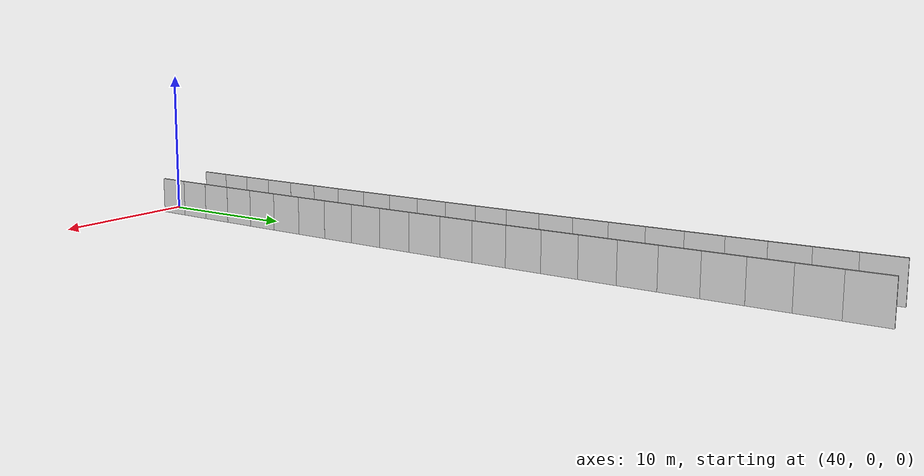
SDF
<?xml version="1.0" ?>
<sdf version="1.6">
  <model name="sps_4624">
    <pose frame="">0 0 0 0 -0 0</pose>
    <static>1</static>
    <self_collide>0</self_collide>
    <allow_auto_disable>0</allow_auto_disable>
    <link name="Wall4532">
      <kinematic>0</kinematic>
      <gravity>1</gravity>
      <self_collide>0</self_collide>
      <collision name="collision">
        <geometry>
          <box>
            <size>2.25462 0.15 2.5</size>
          </box>
        </geometry>
        <pose frame="">0 0 0 0 -0 0</pose>
      </collision>
      <visual name="visual">
        <geometry>
          <box>
            <size>2.25462 0.15 2.5</size>
          </box>
        </geometry>
        <pose frame="">0 0 0 0 -0 0</pose>
        <cast_shadows>1</cast_shadows>
        <transparency>0.0</transparency>
      </visual>
      <pose frame="">41.8405 1.61171 1.25 0 -0 1.53495</pose>
    </link>
    <link name="Wall4533">
      <kinematic>0</kinematic>
      <gravity>1</gravity>
      <self_collide>0</self_collide>
      <collision name="collision">
        <geometry>
          <box>
            <size>2.25468 0.15 2.5</size>
          </box>
        </geometry>
        <pose frame="">0 0 0 0 -0 0</pose>
      </collision>
      <visual name="visual">
        <geometry>
          <box>
            <size>2.25468 0.15 2.5</size>
          </box>
        </geometry>
        <pose frame="">0 0 0 0 -0 0</pose>
        <cast_shadows>1</cast_shadows>
        <transparency>0.0</transparency>
      </visual>
      <pose frame="">41.9187 3.865 1.25 0 -0 1.53728</pose>
    </link>
    <link name="Wall4534">
      <kinematic>0</kinematic>
      <gravity>1</gravity>
      <self_collide>0</self_collide>
      <collision name="collision">
        <geometry>
          <box>
            <size>2.25469 0.15 2.5</size>
          </box>
        </geometry>
        <pose frame="">0 0 0 0 -0 0</pose>
      </collision>
      <visual name="visual">
        <geometry>
          <box>
            <size>2.25469 0.15 2.5</size>
          </box>
        </geometry>
        <pose frame="">0 0 0 0 -0 0</pose>
        <cast_shadows>1</cast_shadows>
        <transparency>0.0</transparency>
      </visual>
      <pose frame="">41.9915 6.11851 1.25 0 -0 1.53966</pose>
    </link>
    <link name="Wall4535">
      <kinematic>0</kinematic>
      <gravity>1</gravity>
      <self_collide>0</self_collide>
      <collision name="collision">
        <geometry>
          <box>
            <size>2.25472 0.15 2.5</size>
          </box>
        </geometry>
        <pose frame="">0 0 0 0 -0 0</pose>
      </collision>
      <visual name="visual">
        <geometry>
          <box>
            <size>2.25472 0.15 2.5</size>
          </box>
        </geometry>
        <pose frame="">0 0 0 0 -0 0</pose>
        <cast_shadows>1</cast_shadows>
        <transparency>0.0</transparency>
      </visual>
      <pose frame="">42.059 8.37221 1.25 0 -0 1.54204</pose>
    </link>
    <link name="Wall4536">
      <kinematic>0</kinematic>
      <gravity>1</gravity>
      <self_collide>0</self_collide>
      <collision name="collision">
        <geometry>
          <box>
            <size>2.25457 0.15 2.5</size>
          </box>
        </geometry>
        <pose frame="">0 0 0 0 -0 0</pose>
      </collision>
      <visual name="visual">
        <geometry>
          <box>
            <size>2.25457 0.15 2.5</size>
          </box>
        </geometry>
        <pose frame="">0 0 0 0 -0 0</pose>
        <cast_shadows>1</cast_shadows>
        <transparency>0.0</transparency>
      </visual>
      <pose frame="">42.1211 10.626 1.25 0 -0 1.54445</pose>
    </link>
    <link name="Wall4537">
      <kinematic>0</kinematic>
      <gravity>1</gravity>
      <self_collide>0</self_collide>
      <collision name="collision">
        <geometry>
          <box>
            <size>2.25468 0.15 2.5</size>
          </box>
        </geometry>
        <pose frame="">0 0 0 0 -0 0</pose>
      </collision>
      <visual name="visual">
        <geometry>
          <box>
            <size>2.25468 0.15 2.5</size>
          </box>
        </geometry>
        <pose frame="">0 0 0 0 -0 0</pose>
        <cast_shadows>1</cast_shadows>
        <transparency>0.0</transparency>
      </visual>
      <pose frame="">42.1779 12.8799 1.25 0 -0 1.54676</pose>
    </link>
    <link name="Wall4538">
      <kinematic>0</kinematic>
      <gravity>1</gravity>
      <self_collide>0</self_collide>
      <collision name="collision">
        <geometry>
          <box>
            <size>2.25449 0.15 2.5</size>
          </box>
        </geometry>
        <pose frame="">0 0 0 0 -0 0</pose>
      </collision>
      <visual name="visual">
        <geometry>
          <box>
            <size>2.25449 0.15 2.5</size>
          </box>
        </geometry>
        <pose frame="">0 0 0 0 -0 0</pose>
        <cast_shadows>1</cast_shadows>
        <transparency>0.0</transparency>
      </visual>
      <pose frame="">42.2294 15.1339 1.25 0 -0 1.54922</pose>
    </link>
    <link name="Wall4539">
      <kinematic>0</kinematic>
      <gravity>1</gravity>
      <self_collide>0</self_collide>
      <collision name="collision">
        <geometry>
          <box>
            <size>2.25462 0.15 2.5</size>
          </box>
        </geometry>
        <pose frame="">0 0 0 0 -0 0</pose>
      </collision>
      <visual name="visual">
        <geometry>
          <box>
            <size>2.25462 0.15 2.5</size>
          </box>
        </geometry>
        <pose frame="">0 0 0 0 -0 0</pose>
        <cast_shadows>1</cast_shadows>
        <transparency>0.0</transparency>
      </visual>
      <pose frame="">42.2753 17.388 1.25 0 -0 1.55166</pose>
    </link>
    <link name="Wall4540">
      <kinematic>0</kinematic>
      <gravity>1</gravity>
      <self_collide>0</self_collide>
      <collision name="collision">
        <geometry>
          <box>
            <size>2.25453 0.15 2.5</size>
          </box>
        </geometry>
        <pose frame="">0 0 0 0 -0 0</pose>
      </collision>
      <visual name="visual">
        <geometry>
          <box>
            <size>2.25453 0.15 2.5</size>
          </box>
        </geometry>
        <pose frame="">0 0 0 0 -0 0</pose>
        <cast_shadows>1</cast_shadows>
        <transparency>0.0</transparency>
      </visual>
      <pose frame="">42.3158 19.6422 1.25 0 -0 1.55401</pose>
    </link>
    <link name="Wall4541">
      <kinematic>0</kinematic>
      <gravity>1</gravity>
      <self_collide>0</self_collide>
      <collision name="collision">
        <geometry>
          <box>
            <size>2.25482 0.15 2.5</size>
          </box>
        </geometry>
        <pose frame="">0 0 0 0 -0 0</pose>
      </collision>
      <visual name="visual">
        <geometry>
          <box>
            <size>2.25482 0.15 2.5</size>
          </box>
        </geometry>
        <pose frame="">0 0 0 0 -0 0</pose>
        <cast_shadows>1</cast_shadows>
        <transparency>0.0</transparency>
      </visual>
      <pose frame="">42.3511 21.8966 1.25 0 -0 1.55626</pose>
    </link>
    <link name="Wall4542">
      <kinematic>0</kinematic>
      <gravity>1</gravity>
      <self_collide>0</self_collide>
      <collision name="collision">
        <geometry>
          <box>
            <size>2.25456 0.15 2.5</size>
          </box>
        </geometry>
        <pose frame="">0 0 0 0 -0 0</pose>
      </collision>
      <visual name="visual">
        <geometry>
          <box>
            <size>2.25456 0.15 2.5</size>
          </box>
        </geometry>
        <pose frame="">0 0 0 0 -0 0</pose>
        <cast_shadows>1</cast_shadows>
        <transparency>0.0</transparency>
      </visual>
      <pose frame="">42.3812 24.1511 1.25 0 -0 1.55864</pose>
    </link>
    <link name="Wall4543">
      <kinematic>0</kinematic>
      <gravity>1</gravity>
      <self_collide>0</self_collide>
      <collision name="collision">
        <geometry>
          <box>
            <size>2.2545 0.15 2.5</size>
          </box>
        </geometry>
        <pose frame="">0 0 0 0 -0 0</pose>
      </collision>
      <visual name="visual">
        <geometry>
          <box>
            <size>2.2545 0.15 2.5</size>
          </box>
        </geometry>
        <pose frame="">0 0 0 0 -0 0</pose>
        <cast_shadows>1</cast_shadows>
        <transparency>0.0</transparency>
      </visual>
      <pose frame="">42.4058 26.4055 1.25 0 -0 1.56113</pose>
    </link>
    <link name="Wall4544">
      <kinematic>0</kinematic>
      <gravity>1</gravity>
      <self_collide>0</self_collide>
      <collision name="collision">
        <geometry>
          <box>
            <size>2.2547 0.15 2.5</size>
          </box>
        </geometry>
        <pose frame="">0 0 0 0 -0 0</pose>
      </collision>
      <visual name="visual">
        <geometry>
          <box>
            <size>2.2547 0.15 2.5</size>
          </box>
        </geometry>
        <pose frame="">0 0 0 0 -0 0</pose>
        <cast_shadows>1</cast_shadows>
        <transparency>0.0</transparency>
      </visual>
      <pose frame="">42.425 28.66 1.25 0 -0 1.56335</pose>
    </link>
    <link name="Wall4545">
      <kinematic>0</kinematic>
      <gravity>1</gravity>
      <self_collide>0</self_collide>
      <collision name="collision">
        <geometry>
          <box>
            <size>2.25442 0.15 2.5</size>
          </box>
        </geometry>
        <pose frame="">0 0 0 0 -0 0</pose>
      </collision>
      <visual name="visual">
        <geometry>
          <box>
            <size>2.25442 0.15 2.5</size>
          </box>
        </geometry>
        <pose frame="">0 0 0 0 -0 0</pose>
        <cast_shadows>1</cast_shadows>
        <transparency>0.0</transparency>
      </visual>
      <pose frame="">42.439 30.9145 1.25 0 -0 1.56581</pose>
    </link>
    <link name="Wall4546">
      <kinematic>0</kinematic>
      <gravity>1</gravity>
      <self_collide>0</self_collide>
      <collision name="collision">
        <geometry>
          <box>
            <size>2.25483 0.15 2.5</size>
          </box>
        </geometry>
        <pose frame="">0 0 0 0 -0 0</pose>
      </collision>
      <visual name="visual">
        <geometry>
          <box>
            <size>2.25483 0.15 2.5</size>
          </box>
        </geometry>
        <pose frame="">0 0 0 0 -0 0</pose>
        <cast_shadows>1</cast_shadows>
        <transparency>0.0</transparency>
      </visual>
      <pose frame="">42.4476 33.1691 1.25 0 -0 1.56822</pose>
    </link>
    <link name="Wall4547">
      <kinematic>0</kinematic>
      <gravity>1</gravity>
      <self_collide>0</self_collide>
      <collision name="collision">
        <geometry>
          <box>
            <size>2.25458 0.15 2.5</size>
          </box>
        </geometry>
        <pose frame="">0 0 0 0 -0 0</pose>
      </collision>
      <visual name="visual">
        <geometry>
          <box>
            <size>2.25458 0.15 2.5</size>
          </box>
        </geometry>
        <pose frame="">0 0 0 0 -0 0</pose>
        <cast_shadows>1</cast_shadows>
        <transparency>0.0</transparency>
      </visual>
      <pose frame="">42.4508 35.4238 1.25 0 -0 1.57053</pose>
    </link>
    <link name="Wall4548">
      <kinematic>0</kinematic>
      <gravity>1</gravity>
      <self_collide>0</self_collide>
      <collision name="collision">
        <geometry>
          <box>
            <size>2.25458 0.15 2.5</size>
          </box>
        </geometry>
        <pose frame="">0 0 0 0 -0 0</pose>
      </collision>
      <visual name="visual">
        <geometry>
          <box>
            <size>2.25458 0.15 2.5</size>
          </box>
        </geometry>
        <pose frame="">0 0 0 0 -0 0</pose>
        <cast_shadows>1</cast_shadows>
        <transparency>0.0</transparency>
      </visual>
      <pose frame="">42.4486 37.6784 1.25 0 -0 1.57302</pose>
    </link>
    <link name="Wall4549">
      <kinematic>0</kinematic>
      <gravity>1</gravity>
      <self_collide>0</self_collide>
      <collision name="collision">
        <geometry>
          <box>
            <size>2.25466 0.15 2.5</size>
          </box>
        </geometry>
        <pose frame="">0 0 0 0 -0 0</pose>
      </collision>
      <visual name="visual">
        <geometry>
          <box>
            <size>2.25466 0.15 2.5</size>
          </box>
        </geometry>
        <pose frame="">0 0 0 0 -0 0</pose>
        <cast_shadows>1</cast_shadows>
        <transparency>0.0</transparency>
      </visual>
      <pose frame="">42.441 39.933 1.25 0 -0 1.57532</pose>
    </link>
    <link name="Wall4550">
      <kinematic>0</kinematic>
      <gravity>1</gravity>
      <self_collide>0</self_collide>
      <collision name="collision">
        <geometry>
          <box>
            <size>2.25463 0.15 2.5</size>
          </box>
        </geometry>
        <pose frame="">0 0 0 0 -0 0</pose>
      </collision>
      <visual name="visual">
        <geometry>
          <box>
            <size>2.25463 0.15 2.5</size>
          </box>
        </geometry>
        <pose frame="">0 0 0 0 -0 0</pose>
        <cast_shadows>1</cast_shadows>
        <transparency>0.0</transparency>
      </visual>
      <pose frame="">42.4282 42.1876 1.25 0 -0 1.57765</pose>
    </link>
    <link name="Wall4551">
      <kinematic>0</kinematic>
      <gravity>1</gravity>
      <self_collide>0</self_collide>
      <collision name="collision">
        <geometry>
          <box>
            <size>2.25449 0.15 2.5</size>
          </box>
        </geometry>
        <pose frame="">0 0 0 0 -0 0</pose>
      </collision>
      <visual name="visual">
        <geometry>
          <box>
            <size>2.25449 0.15 2.5</size>
          </box>
        </geometry>
        <pose frame="">0 0 0 0 -0 0</pose>
        <cast_shadows>1</cast_shadows>
        <transparency>0.0</transparency>
      </visual>
      <pose frame="">42.4099 44.4421 1.25 0 -0 1.58011</pose>
    </link>
    <link name="Wall4552">
      <kinematic>0</kinematic>
      <gravity>1</gravity>
      <self_collide>0</self_collide>
      <collision name="collision">
        <geometry>
          <box>
            <size>2.25473 0.15 2.5</size>
          </box>
        </geometry>
        <pose frame="">0 0 0 0 -0 0</pose>
      </collision>
      <visual name="visual">
        <geometry>
          <box>
            <size>2.25473 0.15 2.5</size>
          </box>
        </geometry>
        <pose frame="">0 0 0 0 -0 0</pose>
        <cast_shadows>1</cast_shadows>
        <transparency>0.0</transparency>
      </visual>
      <pose frame="">42.3863 46.6966 1.25 0 -0 1.58241</pose>
    </link>
    <link name="Wall4553">
      <kinematic>0</kinematic>
      <gravity>1</gravity>
      <self_collide>0</self_collide>
      <collision name="collision">
        <geometry>
          <box>
            <size>2.25444 0.15 2.5</size>
          </box>
        </geometry>
        <pose frame="">0 0 0 0 -0 0</pose>
      </collision>
      <visual name="visual">
        <geometry>
          <box>
            <size>2.25444 0.15 2.5</size>
          </box>
        </geometry>
        <pose frame="">0 0 0 0 -0 0</pose>
        <cast_shadows>1</cast_shadows>
        <transparency>0.0</transparency>
      </visual>
      <pose frame="">42.3573 48.951 1.25 0 -0 1.58498</pose>
    </link>
    <link name="Wall6257">
      <kinematic>0</kinematic>
      <gravity>1</gravity>
      <self_collide>0</self_collide>
      <collision name="collision">
        <geometry>
          <box>
            <size>2.24485 0.15 2.5</size>
          </box>
        </geometry>
        <pose frame="">0 0 0 0 -0 0</pose>
      </collision>
      <visual name="visual">
        <geometry>
          <box>
            <size>2.24485 0.15 2.5</size>
          </box>
        </geometry>
        <pose frame="">0 0 0 0 -0 0</pose>
        <cast_shadows>1</cast_shadows>
        <transparency>0.0</transparency>
      </visual>
      <pose frame="">37.7038 1.76021 1.25 0 -0 1.5349</pose>
    </link>
    <link name="Wall6258">
      <kinematic>0</kinematic>
      <gravity>1</gravity>
      <self_collide>0</self_collide>
      <collision name="collision">
        <geometry>
          <box>
            <size>2.24467 0.15 2.5</size>
          </box>
        </geometry>
        <pose frame="">0 0 0 0 -0 0</pose>
      </collision>
      <visual name="visual">
        <geometry>
          <box>
            <size>2.24467 0.15 2.5</size>
          </box>
        </geometry>
        <pose frame="">0 0 0 0 -0 0</pose>
        <cast_shadows>1</cast_shadows>
        <transparency>0.0</transparency>
      </visual>
      <pose frame="">37.7816 4.00362 1.25 0 -0 1.53729</pose>
    </link>
    <link name="Wall6259">
      <kinematic>0</kinematic>
      <gravity>1</gravity>
      <self_collide>0</self_collide>
      <collision name="collision">
        <geometry>
          <box>
            <size>2.24487 0.15 2.5</size>
          </box>
        </geometry>
        <pose frame="">0 0 0 0 -0 0</pose>
      </collision>
      <visual name="visual">
        <geometry>
          <box>
            <size>2.24487 0.15 2.5</size>
          </box>
        </geometry>
        <pose frame="">0 0 0 0 -0 0</pose>
        <cast_shadows>1</cast_shadows>
        <transparency>0.0</transparency>
      </visual>
      <pose frame="">37.8542 6.24721 1.25 0 -0 1.53961</pose>
    </link>
    <link name="Wall6260">
      <kinematic>0</kinematic>
      <gravity>1</gravity>
      <self_collide>0</self_collide>
      <collision name="collision">
        <geometry>
          <box>
            <size>2.2447 0.15 2.5</size>
          </box>
        </geometry>
        <pose frame="">0 0 0 0 -0 0</pose>
      </collision>
      <visual name="visual">
        <geometry>
          <box>
            <size>2.2447 0.15 2.5</size>
          </box>
        </geometry>
        <pose frame="">0 0 0 0 -0 0</pose>
        <cast_shadows>1</cast_shadows>
        <transparency>0.0</transparency>
      </visual>
      <pose frame="">37.9214 8.49098 1.25 0 -0 1.54211</pose>
    </link>
    <link name="Wall6261">
      <kinematic>0</kinematic>
      <gravity>1</gravity>
      <self_collide>0</self_collide>
      <collision name="collision">
        <geometry>
          <box>
            <size>2.24498 0.15 2.5</size>
          </box>
        </geometry>
        <pose frame="">0 0 0 0 -0 0</pose>
      </collision>
      <visual name="visual">
        <geometry>
          <box>
            <size>2.24498 0.15 2.5</size>
          </box>
        </geometry>
        <pose frame="">0 0 0 0 -0 0</pose>
        <cast_shadows>1</cast_shadows>
        <transparency>0.0</transparency>
      </visual>
      <pose frame="">37.9831 10.735 1.25 0 -0 1.5445</pose>
    </link>
    <link name="Wall6262">
      <kinematic>0</kinematic>
      <gravity>1</gravity>
      <self_collide>0</self_collide>
      <collision name="collision">
        <geometry>
          <box>
            <size>2.24467 0.15 2.5</size>
          </box>
        </geometry>
        <pose frame="">0 0 0 0 -0 0</pose>
      </collision>
      <visual name="visual">
        <geometry>
          <box>
            <size>2.24467 0.15 2.5</size>
          </box>
        </geometry>
        <pose frame="">0 0 0 0 -0 0</pose>
        <cast_shadows>1</cast_shadows>
        <transparency>0.0</transparency>
      </visual>
      <pose frame="">38.0397 12.9791 1.25 0 -0 1.54673</pose>
    </link>
    <link name="Wall6263">
      <kinematic>0</kinematic>
      <gravity>1</gravity>
      <self_collide>0</self_collide>
      <collision name="collision">
        <geometry>
          <box>
            <size>2.24472 0.15 2.5</size>
          </box>
        </geometry>
        <pose frame="">0 0 0 0 -0 0</pose>
      </collision>
      <visual name="visual">
        <geometry>
          <box>
            <size>2.24472 0.15 2.5</size>
          </box>
        </geometry>
        <pose frame="">0 0 0 0 -0 0</pose>
        <cast_shadows>1</cast_shadows>
        <transparency>0.0</transparency>
      </visual>
      <pose frame="">38.0909 15.2232 1.25 0 -0 1.54923</pose>
    </link>
    <link name="Wall6264">
      <kinematic>0</kinematic>
      <gravity>1</gravity>
      <self_collide>0</self_collide>
      <collision name="collision">
        <geometry>
          <box>
            <size>2.2448 0.15 2.5</size>
          </box>
        </geometry>
        <pose frame="">0 0 0 0 -0 0</pose>
      </collision>
      <visual name="visual">
        <geometry>
          <box>
            <size>2.2448 0.15 2.5</size>
          </box>
        </geometry>
        <pose frame="">0 0 0 0 -0 0</pose>
        <cast_shadows>1</cast_shadows>
        <transparency>0.0</transparency>
      </visual>
      <pose frame="">38.1366 17.4675 1.25 0 -0 1.55157</pose>
    </link>
    <link name="Wall6265">
      <kinematic>0</kinematic>
      <gravity>1</gravity>
      <self_collide>0</self_collide>
      <collision name="collision">
        <geometry>
          <box>
            <size>2.24452 0.15 2.5</size>
          </box>
        </geometry>
        <pose frame="">0 0 0 0 -0 0</pose>
      </collision>
      <visual name="visual">
        <geometry>
          <box>
            <size>2.24452 0.15 2.5</size>
          </box>
        </geometry>
        <pose frame="">0 0 0 0 -0 0</pose>
        <cast_shadows>1</cast_shadows>
        <transparency>0.0</transparency>
      </visual>
      <pose frame="">38.1771 19.7118 1.25 0 -0 1.55394</pose>
    </link>
    <link name="Wall6266">
      <kinematic>0</kinematic>
      <gravity>1</gravity>
      <self_collide>0</self_collide>
      <collision name="collision">
        <geometry>
          <box>
            <size>2.24505 0.15 2.5</size>
          </box>
        </geometry>
        <pose frame="">0 0 0 0 -0 0</pose>
      </collision>
      <visual name="visual">
        <geometry>
          <box>
            <size>2.24505 0.15 2.5</size>
          </box>
        </geometry>
        <pose frame="">0 0 0 0 -0 0</pose>
        <cast_shadows>1</cast_shadows>
        <transparency>0.0</transparency>
      </visual>
      <pose frame="">38.2124 21.9563 1.25 0 -0 1.55628</pose>
    </link>
    <link name="Wall6267">
      <kinematic>0</kinematic>
      <gravity>1</gravity>
      <self_collide>0</self_collide>
      <collision name="collision">
        <geometry>
          <box>
            <size>2.24479 0.15 2.5</size>
          </box>
        </geometry>
        <pose frame="">0 0 0 0 -0 0</pose>
      </collision>
      <visual name="visual">
        <geometry>
          <box>
            <size>2.24479 0.15 2.5</size>
          </box>
        </geometry>
        <pose frame="">0 0 0 0 -0 0</pose>
        <cast_shadows>1</cast_shadows>
        <transparency>0.0</transparency>
      </visual>
      <pose frame="">38.2421 24.201 1.25 0 -0 1.55878</pose>
    </link>
    <link name="Wall6268">
      <kinematic>0</kinematic>
      <gravity>1</gravity>
      <self_collide>0</self_collide>
      <collision name="collision">
        <geometry>
          <box>
            <size>2.24468 0.15 2.5</size>
          </box>
        </geometry>
        <pose frame="">0 0 0 0 -0 0</pose>
      </collision>
      <visual name="visual">
        <geometry>
          <box>
            <size>2.24468 0.15 2.5</size>
          </box>
        </geometry>
        <pose frame="">0 0 0 0 -0 0</pose>
        <cast_shadows>1</cast_shadows>
        <transparency>0.0</transparency>
      </visual>
      <pose frame="">38.2667 26.4456 1.25 0 -0 1.56098</pose>
    </link>
    <link name="Wall6269">
      <kinematic>0</kinematic>
      <gravity>1</gravity>
      <self_collide>0</self_collide>
      <collision name="collision">
        <geometry>
          <box>
            <size>2.24487 0.15 2.5</size>
          </box>
        </geometry>
        <pose frame="">0 0 0 0 -0 0</pose>
      </collision>
      <visual name="visual">
        <geometry>
          <box>
            <size>2.24487 0.15 2.5</size>
          </box>
        </geometry>
        <pose frame="">0 0 0 0 -0 0</pose>
        <cast_shadows>1</cast_shadows>
        <transparency>0.0</transparency>
      </visual>
      <pose frame="">38.2858 28.6903 1.25 0 -0 1.56351</pose>
    </link>
    <link name="Wall6270">
      <kinematic>0</kinematic>
      <gravity>1</gravity>
      <self_collide>0</self_collide>
      <collision name="collision">
        <geometry>
          <box>
            <size>2.2446 0.15 2.5</size>
          </box>
        </geometry>
        <pose frame="">0 0 0 0 -0 0</pose>
      </collision>
      <visual name="visual">
        <geometry>
          <box>
            <size>2.2446 0.15 2.5</size>
          </box>
        </geometry>
        <pose frame="">0 0 0 0 -0 0</pose>
        <cast_shadows>1</cast_shadows>
        <transparency>0.0</transparency>
      </visual>
      <pose frame="">38.2996 30.935 1.25 0 -0 1.56579</pose>
    </link>
    <link name="Wall6271">
      <kinematic>0</kinematic>
      <gravity>1</gravity>
      <self_collide>0</self_collide>
      <collision name="collision">
        <geometry>
          <box>
            <size>2.24482 0.15 2.5</size>
          </box>
        </geometry>
        <pose frame="">0 0 0 0 -0 0</pose>
      </collision>
      <visual name="visual">
        <geometry>
          <box>
            <size>2.24482 0.15 2.5</size>
          </box>
        </geometry>
        <pose frame="">0 0 0 0 -0 0</pose>
        <cast_shadows>1</cast_shadows>
        <transparency>0.0</transparency>
      </visual>
      <pose frame="">38.3082 33.1797 1.25 0 -0 1.56821</pose>
    </link>
    <link name="Wall6272">
      <kinematic>0</kinematic>
      <gravity>1</gravity>
      <self_collide>0</self_collide>
      <collision name="collision">
        <geometry>
          <box>
            <size>2.245 0.15 2.5</size>
          </box>
        </geometry>
        <pose frame="">0 0 0 0 -0 0</pose>
      </collision>
      <visual name="visual">
        <geometry>
          <box>
            <size>2.245 0.15 2.5</size>
          </box>
        </geometry>
        <pose frame="">0 0 0 0 -0 0</pose>
        <cast_shadows>1</cast_shadows>
        <transparency>0.0</transparency>
      </visual>
      <pose frame="">38.3114 35.4246 1.25 0 -0 1.57052</pose>
    </link>
    <link name="Wall6273">
      <kinematic>0</kinematic>
      <gravity>1</gravity>
      <self_collide>0</self_collide>
      <collision name="collision">
        <geometry>
          <box>
            <size>2.24463 0.15 2.5</size>
          </box>
        </geometry>
        <pose frame="">0 0 0 0 -0 0</pose>
      </collision>
      <visual name="visual">
        <geometry>
          <box>
            <size>2.24463 0.15 2.5</size>
          </box>
        </geometry>
        <pose frame="">0 0 0 0 -0 0</pose>
        <cast_shadows>1</cast_shadows>
        <transparency>0.0</transparency>
      </visual>
      <pose frame="">38.3093 37.6694 1.25 0 -0 1.57294</pose>
    </link>
    <link name="Wall6274">
      <kinematic>0</kinematic>
      <gravity>1</gravity>
      <self_collide>0</self_collide>
      <collision name="collision">
        <geometry>
          <box>
            <size>2.24484 0.15 2.5</size>
          </box>
        </geometry>
        <pose frame="">0 0 0 0 -0 0</pose>
      </collision>
      <visual name="visual">
        <geometry>
          <box>
            <size>2.24484 0.15 2.5</size>
          </box>
        </geometry>
        <pose frame="">0 0 0 0 -0 0</pose>
        <cast_shadows>1</cast_shadows>
        <transparency>0.0</transparency>
      </visual>
      <pose frame="">38.3017 39.9141 1.25 0 -0 1.57534</pose>
    </link>
    <link name="Wall6275">
      <kinematic>0</kinematic>
      <gravity>1</gravity>
      <self_collide>0</self_collide>
      <collision name="collision">
        <geometry>
          <box>
            <size>2.24462 0.15 2.5</size>
          </box>
        </geometry>
        <pose frame="">0 0 0 0 -0 0</pose>
      </collision>
      <visual name="visual">
        <geometry>
          <box>
            <size>2.24462 0.15 2.5</size>
          </box>
        </geometry>
        <pose frame="">0 0 0 0 -0 0</pose>
        <cast_shadows>1</cast_shadows>
        <transparency>0.0</transparency>
      </visual>
      <pose frame="">38.289 42.1588 1.25 0 -0 1.57765</pose>
    </link>
    <link name="Wall6276">
      <kinematic>0</kinematic>
      <gravity>1</gravity>
      <self_collide>0</self_collide>
      <collision name="collision">
        <geometry>
          <box>
            <size>2.24491 0.15 2.5</size>
          </box>
        </geometry>
        <pose frame="">0 0 0 0 -0 0</pose>
      </collision>
      <visual name="visual">
        <geometry>
          <box>
            <size>2.24491 0.15 2.5</size>
          </box>
        </geometry>
        <pose frame="">0 0 0 0 -0 0</pose>
        <cast_shadows>1</cast_shadows>
        <transparency>0.0</transparency>
      </visual>
      <pose frame="">38.2708 44.4035 1.25 0 -0 1.58015</pose>
    </link>
    <link name="Wall6277">
      <kinematic>0</kinematic>
      <gravity>1</gravity>
      <self_collide>0</self_collide>
      <collision name="collision">
        <geometry>
          <box>
            <size>2.24478 0.15 2.5</size>
          </box>
        </geometry>
        <pose frame="">0 0 0 0 -0 0</pose>
      </collision>
      <visual name="visual">
        <geometry>
          <box>
            <size>2.24478 0.15 2.5</size>
          </box>
        </geometry>
        <pose frame="">0 0 0 0 -0 0</pose>
        <cast_shadows>1</cast_shadows>
        <transparency>0.0</transparency>
      </visual>
      <pose frame="">38.2472 46.6482 1.25 0 -0 1.58249</pose>
    </link>
    <link name="Wall6278">
      <kinematic>0</kinematic>
      <gravity>1</gravity>
      <self_collide>0</self_collide>
      <collision name="collision">
        <geometry>
          <box>
            <size>2.24479 0.15 2.5</size>
          </box>
        </geometry>
        <pose frame="">0 0 0 0 -0 0</pose>
      </collision>
      <visual name="visual">
        <geometry>
          <box>
            <size>2.24479 0.15 2.5</size>
          </box>
        </geometry>
        <pose frame="">0 0 0 0 -0 0</pose>
        <cast_shadows>1</cast_shadows>
        <transparency>0.0</transparency>
      </visual>
      <pose frame="">38.2183 48.8928 1.25 0 -0 1.58485</pose>
    </link>
  </model>
</sdf>
